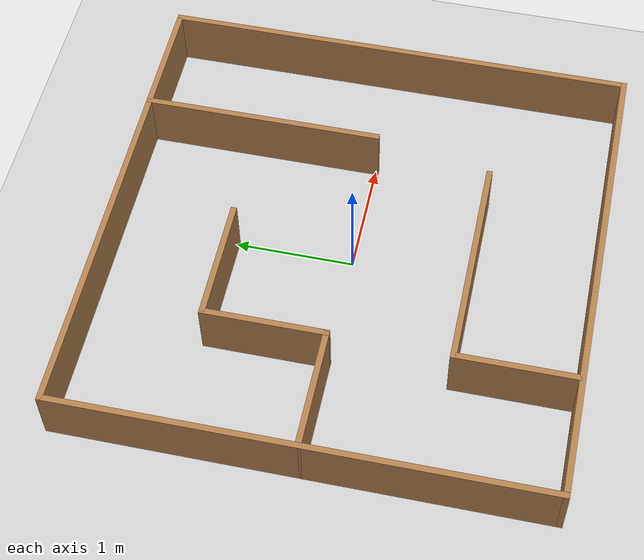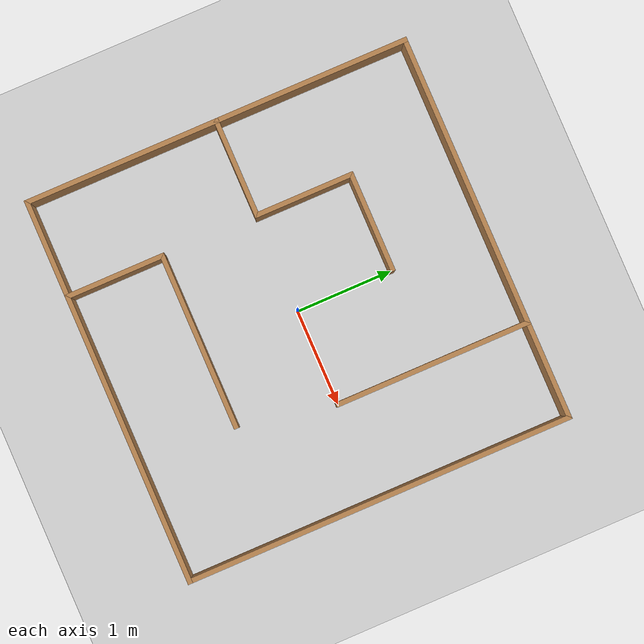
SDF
<sdf version="1.6">
 <world name="default">
  <light name="sun" type="directional">
   <pose>0 0 10 0 -0 0</pose>
   <diffuse>0.8 0.8 0.8 1</diffuse>
   <specular>0.1 0.1 0.1 1</specular>
   <attenuation>
    <range>1000</range>
    <constant>0.9</constant>
    <linear>0.01</linear>
    <quadratic>0.001</quadratic>
   </attenuation>
   <direction>-0.5 0.5 -1</direction>
  </light>
  <model name="ground_plane">
   <static>1</static>
   <link name="link">
    <collision name="collision">
     <geometry><plane><normal>0 0 1</normal><size>100 100</size></plane></geometry>
     <surface><friction><ode><mu>100</mu><mu2>50</mu2></ode></friction></surface>
    </collision>
    <visual name="visual">
     <cast_shadows>0</cast_shadows>
     <geometry><plane><normal>0 0 1</normal><size>100 100</size></plane></geometry>
     <material>
      <script><uri>file://media/materials/scripts/gazebo.material</uri><name>Gazebo/Grey</name></script>
     </material>
    </visual>
   </link>
  </model>
  <gravity>0 0 -9.8</gravity>
  <magnetic_field>6e-06 2.3e-05 -4.2e-05</magnetic_field>
  <atmosphere type="adiabatic"/>
  <physics name="default_physics" default="0" type="ode">
   <max_step_size>0.001</max_step_size>
   <real_time_factor>1</real_time_factor>
   <real_time_update_rate>1000</real_time_update_rate>
  </physics>
  <scene><ambient>0.4 0.4 0.4 1</ambient><background>0.7 0.7 0.7 1</background><shadows>1</shadows></scene>
  <spherical_coordinates>
   <surface_model>EARTH_WGS84</surface_model>
   <latitude_deg>0</latitude_deg>
   <longitude_deg>0</longitude_deg>
   <elevation>0</elevation>
   <heading_deg>0</heading_deg>
  </spherical_coordinates>
  <model name="maze2">
   <link name="Wall_0">
    <collision name="Wall_0_Collision">
     <geometry><box><size>4.05 0.05 0.5</size></box></geometry>
     <pose>0 0 0.25 0 -0 0</pose>
    </collision>
    <visual name="Wall_0_Visual">
     <pose>0 0 0.25 0 -0 0</pose>
     <geometry><box><size>4.05 0.05 0.5</size></box></geometry>
     <material>
      <script><uri>file://media/materials/scripts/gazebo.material</uri><name>Gazebo/Wood</name></script>
      <ambient>1 1 1 1</ambient>
     </material>
    </visual>
    <pose>-2 0 0 0 -0 1.5708</pose>
   </link>
   <link name="Wall_10">
    <collision name="Wall_10_Collision">
     <geometry><box><size>1.05 0.05 0.5</size></box></geometry>
     <pose>0 0 0.25 0 -0 0</pose>
    </collision>
    <visual name="Wall_10_Visual">
     <pose>0 0 0.25 0 -0 0</pose>
     <geometry><box><size>1.05 0.05 0.5</size></box></geometry>
     <material>
      <script><uri>file://media/materials/scripts/gazebo.material</uri><name>Gazebo/Wood</name></script>
      <ambient>1 1 1 1</ambient>
     </material>
    </visual>
    <pose>-1 -1.5 0 0 -0 1.5708</pose>
   </link>
   <link name="Wall_12">
    <collision name="Wall_12_Collision">
     <geometry><box><size>1.85 0.05 0.5</size></box></geometry>
     <pose>0 0 0.25 0 -0 0</pose>
    </collision>
    <visual name="Wall_12_Visual">
     <pose>0 0 0.25 0 -0 0</pose>
     <geometry><box><size>1.85 0.05 0.5</size></box></geometry>
     <material>
      <script><uri>file://media/materials/scripts/gazebo.material</uri><name>Gazebo/Wood</name></script>
      <ambient>1 1 1 1</ambient>
     </material>
    </visual>
    <pose>-0.1 -1 0 0 -0 0</pose>
   </link>
   <link name="Wall_14">
    <collision name="Wall_14_Collision">
     <geometry><box><size>2.05 0.05 0.5</size></box></geometry>
     <pose>0 0 0.25 0 -0 0</pose>
    </collision>
    <visual name="Wall_14_Visual">
     <pose>0 0 0.25 0 -0 0</pose>
     <geometry><box><size>2.05 0.05 0.5</size></box></geometry>
     <material>
      <script><uri>file://media/materials/scripts/gazebo.material</uri><name>Gazebo/Wood</name></script>
      <ambient>1 1 1 1</ambient>
     </material>
    </visual>
    <pose>1 1 0 0 -0 1.5708</pose>
   </link>
   <link name="Wall_17">
    <collision name="Wall_17_Collision">
     <geometry><box><size>1.05 0.05 0.5</size></box></geometry>
     <pose>0 0 0.25 0 -0 0</pose>
    </collision>
    <visual name="Wall_17_Visual">
     <pose>0 0 0.25 0 -0 0</pose>
     <geometry><box><size>1.05 0.05 0.5</size></box></geometry>
     <material>
      <script><uri>file://media/materials/scripts/gazebo.material</uri><name>Gazebo/Wood</name></script>
      <ambient>1 1 1 1</ambient>
     </material>
    </visual>
    <pose>-1.5 0 0 0 -0 0</pose>
   </link>
   <link name="Wall_18">
    <collision name="Wall_18_Collision">
     <geometry><box><size>1.05 0.05 0.5</size></box></geometry>
     <pose>0 0 0.25 0 -0 0</pose>
    </collision>
    <visual name="Wall_18_Visual">
     <pose>0 0 0.25 0 -0 0</pose>
     <geometry><box><size>1.05 0.05 0.5</size></box></geometry>
     <material>
      <script><uri>file://media/materials/scripts/gazebo.material</uri><name>Gazebo/Wood</name></script>
      <ambient>1 1 1 1</ambient>
     </material>
    </visual>
    <pose>-1 0.5 0 0 -0 1.5708</pose>
   </link>
   <link name="Wall_19">
    <collision name="Wall_19_Collision">
     <geometry><box><size>1.05 0.05 0.5</size></box></geometry>
     <pose>0 0 0.25 0 -0 0</pose>
    </collision>
    <visual name="Wall_19_Visual">
     <pose>0 0 0.25 0 -0 0</pose>
     <geometry><box><size>1.05 0.05 0.5</size></box></geometry>
     <material>
      <script><uri>file://media/materials/scripts/gazebo.material</uri><name>Gazebo/Wood</name></script>
      <ambient>1 1 1 1</ambient>
     </material>
    </visual>
    <pose>-0.5 1 0 0 -0 0</pose>
   </link>
   <link name="Wall_3">
    <collision name="Wall_3_Collision">
     <geometry><box><size>4.05 0.05 0.5</size></box></geometry>
     <pose>0 0 0.25 0 -0 0</pose>
    </collision>
    <visual name="Wall_3_Visual">
     <pose>0 0 0.25 0 -0 0</pose>
     <geometry><box><size>4.05 0.05 0.5</size></box></geometry>
     <material>
      <script><uri>file://media/materials/scripts/gazebo.material</uri><name>Gazebo/Wood</name></script>
      <ambient>1 1 1 1</ambient>
     </material>
    </visual>
    <pose>0 2 0 0 -0 0</pose>
   </link>
   <link name="Wall_6">
    <collision name="Wall_6_Collision">
     <geometry><box><size>4.05 0.05 0.5</size></box></geometry>
     <pose>0 0 0.25 0 -0 0</pose>
    </collision>
    <visual name="Wall_6_Visual">
     <pose>0 0 0.25 0 -0 0</pose>
     <geometry><box><size>4.05 0.05 0.5</size></box></geometry>
     <material>
      <script><uri>file://media/materials/scripts/gazebo.material</uri><name>Gazebo/Wood</name></script>
      <ambient>1 1 1 1</ambient>
     </material>
    </visual>
    <pose>2 0 0 0 -0 1.5708</pose>
   </link>
   <link name="Wall_8">
    <collision name="Wall_8_Collision">
     <geometry><box><size>4.05 0.05 0.5</size></box></geometry>
     <pose>0 0 0.25 0 -0 0</pose>
    </collision>
    <visual name="Wall_8_Visual">
     <pose>0 0 0.25 0 -0 0</pose>
     <geometry><box><size>4.05 0.05 0.5</size></box></geometry>
     <material>
      <script><uri>file://media/materials/scripts/gazebo.material</uri><name>Gazebo/Wood</name></script>
      <ambient>1 1 1 1</ambient>
     </material>
    </visual>
    <pose>0 -2 0 0 -0 0</pose>
   </link>
   <static>1</static>
  </model>
 </world>
</sdf>
